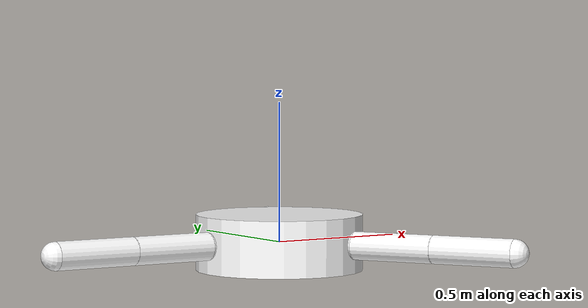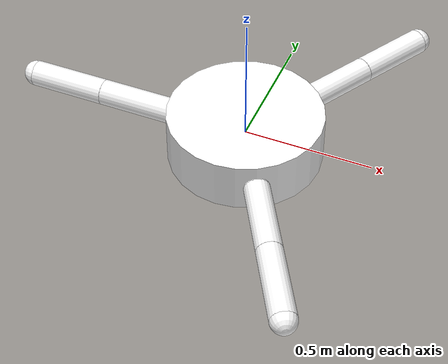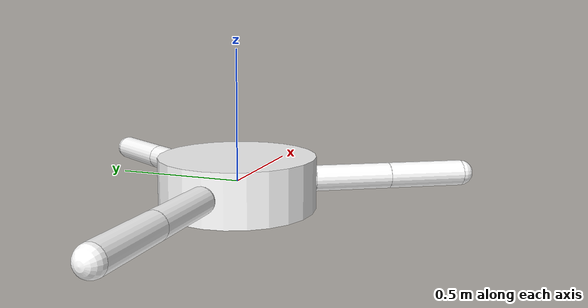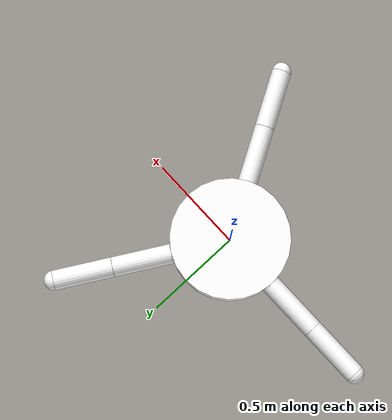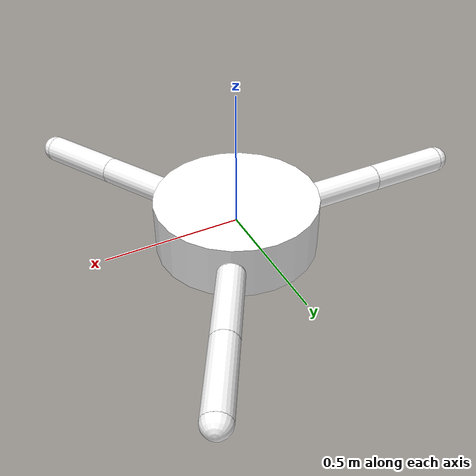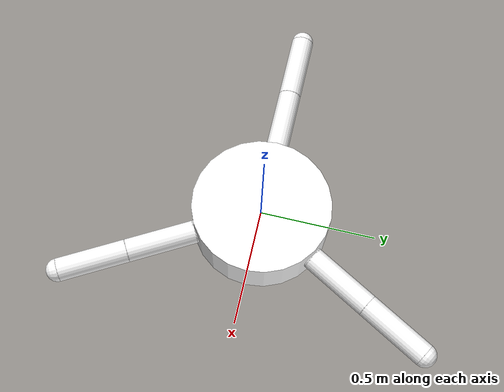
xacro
<?xml version='1.0' encoding='UTF-8'?>
<robot xmlns:xacro="http:/ros.org/wiki/xacro" name="world">

    <link name="world"/>

    <xacro:include filename="$(find tribot)/urdf/tribot.urdf.xacro" />
    <xacro:tri parent="world" base_radius="0.3" base_length="0.2" hip_radius="0.05" leg_length="0.3" />

</robot>

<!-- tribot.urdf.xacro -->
<robot name="tribot"
    xmlns:xacro="http://ros.org/wiki/xacro">

    <xacro:macro name="tri" params="parent base_radius base_length hip_radius leg_length">

        <link name="base_link">
            <inertial>
                <origin rpy="0 0 0" xyz="0 0 0"/>
                <mass value="2"/>
                <inertia ixx="0.1" ixy="0" ixz="0" iyy="0.1" iyz="0" izz="0.1"/>
            </inertial>
            <visual>
                <origin rpy="0 0 0" xyz="0 0 0"/>
                <geometry>
                    <cylinder radius="${base_radius}" length="${base_length}"/>
                </geometry>
                <material name="framemat0">
                    <color rgba="1 1 1 1" />
                </material>
            </visual>
            <collision>
                <origin rpy="0 0 0" xyz="0 0 0"/>
                <geometry>
                    <cylinder radius="${base_radius}" length="${base_length}"/>
                </geometry>
            </collision>
        </link>

        <link name="hip_back">
            <inertial>
                <origin rpy="0 0 0" xyz="0 0 0"/>
                <mass value="0.3"/>
                <inertia ixx="0.1" ixy="0" ixz="0" iyy="0.1" iyz="0" izz="0.1"/>
            </inertial>
            <visual>
                <origin rpy="0 0 0" xyz="0 0 0"/>
                <geometry>
                    <sphere radius="${hip_radius}" />
                </geometry>
                <material name="framemat0">
                    <color rgba="1 1 1 1" />
                </material>
            </visual>
            <collision>
                <origin rpy="0 0 0" xyz="0 0 0"/>
                <geometry>
                    <sphere radius="${hip_radius}" />
                </geometry>
            </collision>
        </link>

        <link name="hip_left">
            <inertial>
                <origin rpy="0 0 0" xyz="0 0 0"/>
                <mass value="0.3"/>
                <inertia ixx="0.1" ixy="0" ixz="0" iyy="0.1" iyz="0" izz="0.1"/>
            </inertial>
            <visual>
                <origin rpy="0 0 0" xyz="0 0 0"/>
                <geometry>
                    <sphere radius="${hip_radius}" />
                </geometry>
                <material name="framemat0">
                    <color rgba="1 1 1 1" />
                </material>
            </visual>
            <collision>
                <origin rpy="0 0 0" xyz="0 0 0"/>
                <geometry>
                    <sphere radius="${hip_radius}" />
                </geometry>
            </collision>
        </link>

        <link name="hip_right">
            <inertial>
                <origin rpy="0 0 0" xyz="0 0 0"/>
                <mass value="0.3"/>
                <inertia ixx="0.1" ixy="0" ixz="0" iyy="0.1" iyz="0" izz="0.1"/>
            </inertial>
            <visual>
                <origin rpy="0 0 0" xyz="0 0 0"/>
                <geometry>
                    <sphere radius="${hip_radius}" />
                </geometry>
                <material name="framemat0">
                    <color rgba="1 1 1 1" />
                </material>
            </visual>
            <collision>
                <origin rpy="0 0 0" xyz="0 0 0"/>
                <geometry>
                    <sphere radius="${hip_radius}" />
                </geometry>
            </collision>
        </link>

        <link name="leg_back">
            <inertial>
                <origin rpy="0 0 0" xyz="0 0 ${0.5*leg_length}"/>
                <mass value="0.3"/>
                <inertia ixx="0.1" ixy="0" ixz="0" iyy="0.1" iyz="0" izz="0.1"/>
            </inertial>
            <visual>
                <origin rpy="0 0 0" xyz="0 0 ${0.5*leg_length}"/>
                <geometry>
                    <cylinder radius="0.05" length="${leg_length}"/>
                </geometry>
                <material name="framemat0">
                    <color rgba="1 1 1 1" />
                </material>
            </visual>
            <collision>
                <origin rpy="0 0 0" xyz="0 0 ${0.5*leg_length}"/>
                <geometry>
                    <cylinder radius="0.05" length="${leg_length}"/>
                </geometry>
            </collision>
            <visual>
                <origin rpy="0 0 0" xyz="0 0 ${leg_length}"/>
                <geometry>
                    <sphere radius="0.05"/>
                </geometry>
                <material name="framemat0">
                    <color rgba="1 1 1 1" />
                </material>
            </visual>
            <collision>
                <origin rpy="0 0 0" xyz="0 0 ${leg_length}"/>
                <geometry>
                    <sphere radius="0.05"/>
                </geometry>
            </collision>
        </link>

        <link name="leg_left">
            <inertial>
                <origin rpy="0 0 0" xyz="0 0 ${0.5*leg_length}"/>
                <mass value="0.3"/>
                <inertia ixx="0.1" ixy="0" ixz="0" iyy="0.1" iyz="0" izz="0.1"/>
            </inertial>
            <visual>
                <origin rpy="0 0 0" xyz="0 0 ${0.5*leg_length}"/>
                <geometry>
                    <cylinder radius="0.05" length="${leg_length}"/>
                </geometry>
                <material name="framemat0">
                    <color rgba="1 1 1 1" />
                </material>
            </visual>
            <collision>
                <origin rpy="0 0 0" xyz="0 0 ${0.5*leg_length}"/>
                <geometry>
                    <cylinder radius="0.05" length="${leg_length}"/>
                </geometry>
            </collision>
            <visual>
                <origin rpy="0 0 0" xyz="0 0 ${leg_length}"/>
                <geometry>
                    <sphere radius="0.05"/>
                </geometry>
                <material name="framemat0">
                    <color rgba="1 1 1 1" />
                </material>
            </visual>
            <collision>
                <origin rpy="0 0 0" xyz="0 0 ${leg_length}"/>
                <geometry>
                    <sphere radius="0.05"/>
                </geometry>
            </collision>
        </link>

        <link name="leg_right">
            <inertial>
                <origin rpy="0 0 0" xyz="0 0 ${0.5*leg_length}"/>
                <mass value="0.3"/>
                <inertia ixx="0.1" ixy="0" ixz="0" iyy="0.1" iyz="0" izz="0.1"/>
            </inertial>
            <visual>
                <origin rpy="0 0 0" xyz="0 0 ${0.5*leg_length}"/>
                <geometry>
                    <cylinder radius="0.05" length="${leg_length}"/>
                </geometry>
                <material name="framemat0">
                    <color rgba="1 1 1 1" />
                </material>
            </visual>
            <collision>
                <origin rpy="0 0 0" xyz="0 0 ${0.5*leg_length}"/>
                <geometry>
                    <cylinder radius="0.05" length="${leg_length}"/>
                </geometry>
            </collision>
            <visual>
                <origin rpy="0 0 0" xyz="0 0 ${leg_length}"/>
                <geometry>
                    <sphere radius="0.05"/>
                </geometry>
                <material name="framemat0">
                    <color rgba="1 1 1 1" />
                </material>
            </visual>
            <collision>
                <origin rpy="0 0 0" xyz="0 0 ${leg_length}"/>
                <geometry>
                    <sphere radius="0.05"/>
                </geometry>
            </collision>
        </link>

        <link name="foot_back">
            <inertial>
                <origin rpy="0 0 0" xyz="0 0 ${0.5*leg_length}"/>
                <mass value="0.3"/>
                <inertia ixx="0.1" ixy="0" ixz="0" iyy="0.1" iyz="0" izz="0.1"/>
            </inertial>
            <visual>
                <origin rpy="0 0 0" xyz="0 0 ${0.5*leg_length}"/>
                <geometry>
                    <cylinder radius="0.05" length="${leg_length}"/>
                </geometry>
                <material name="framemat0">
                    <color rgba="1 1 1 1" />
                </material>
            </visual>
            <collision>
                <origin rpy="0 0 0" xyz="0 0 ${0.5*leg_length}"/>
                <geometry>
                    <cylinder radius="0.05" length="${leg_length}"/>
                </geometry>
            </collision>
            <visual>
                <origin rpy="0 0 0" xyz="0 0 ${leg_length}"/>
                <geometry>
                    <sphere radius="0.05"/>
                </geometry>
                <material name="framemat0">
                    <color rgba="1 1 1 1" />
                </material>
            </visual>
            <collision>
                <origin rpy="0 0 0" xyz="0 0 ${leg_length}"/>
                <geometry>
                    <sphere radius="0.05"/>
                </geometry>
            </collision>
        </link>

        <link name="foot_left">
            <inertial>
                <origin rpy="0 0 0" xyz="0 0 ${0.5*leg_length}"/>
                <mass value="0.3"/>
                <inertia ixx="0.1" ixy="0" ixz="0" iyy="0.1" iyz="0" izz="0.1"/>
            </inertial>
            <visual>
                <origin rpy="0 0 0" xyz="0 0 ${0.5*leg_length}"/>
                <geometry>
                    <cylinder radius="0.05" length="${leg_length}"/>
                </geometry>
                <material name="framemat0">
                    <color rgba="1 1 1 1" />
                </material>
            </visual>
            <collision>
                <origin rpy="0 0 0" xyz="0 0 ${0.5*leg_length}"/>
                <geometry>
                    <cylinder radius="0.05" length="${leg_length}"/>
                </geometry>
            </collision>
            <visual>
                <origin rpy="0 0 0" xyz="0 0 ${leg_length}"/>
                <geometry>
                    <sphere radius="0.05"/>
                </geometry>
                <material name="framemat0">
                    <color rgba="1 1 1 1" />
                </material>
            </visual>
            <collision>
                <origin rpy="0 0 0" xyz="0 0 ${leg_length}"/>
                <geometry>
                    <sphere radius="0.05"/>
                </geometry>
            </collision>
        </link>

        <link name="foot_right">
            <inertial>
                <origin rpy="0 0 0" xyz="0 0 ${0.5*leg_length}"/>
                <mass value="0.3"/>
                <inertia ixx="0.1" ixy="0" ixz="0" iyy="0.1" iyz="0" izz="0.1"/>
            </inertial>
            <visual>
                <origin rpy="0 0 0" xyz="0 0 ${0.5*leg_length}"/>
                <geometry>
                    <cylinder radius="0.05" length="${leg_length}"/>
                </geometry>
                <material name="framemat0">
                    <color rgba="1 1 1 1" />
                </material>
            </visual>
            <collision>
                <origin rpy="0 0 0" xyz="0 0 ${0.5*leg_length}"/>
                <geometry>
                    <cylinder radius="0.05" length="${leg_length}"/>
                </geometry>
            </collision>
            <visual>
                <origin rpy="0 0 0" xyz="0 0 ${leg_length}"/>
                <geometry>
                    <sphere radius="0.05"/>
                </geometry>
                <material name="framemat0">
                    <color rgba="1 1 1 1" />
                </material>
            </visual>
            <collision>
                <origin rpy="0 0 0" xyz="0 0 ${leg_length}"/>
                <geometry>
                    <sphere radius="0.05"/>
                </geometry>
            </collision>
        </link>

        <joint name="hip_back_joint" type="continuous">
            <parent link="base_link"/>
            <child link="hip_back"/>
            <origin xyz="${-base_radius} 0 0" rpy="0 0 3.1415" />
            <axis xyz="1 0 0" />
        </joint>

        <joint name="hip_left_joint" type="continuous">
            <parent link="base_link"/>
            <child link="hip_left"/>
            <origin xyz="${base_radius*0.5} ${0.866*base_radius}  0" rpy="0 0 1.0472" />
            <axis xyz="1 0 0" />
        </joint>

        <joint name="hip_right_joint" type="continuous">
            <parent link="base_link"/>
            <child link="hip_right"/>
            <origin xyz="${base_radius*0.5} ${-0.866*base_radius}  0" rpy="0 0 -1.0472" />
            <axis xyz="1 0 0" />
        </joint>

        <joint name="leg_back_joint" type="continuous">
            <parent link="hip_back"/>
            <child link="leg_back"/>
            <origin xyz="0 0 0" rpy="0 1.57 0" />
            <axis xyz="0 1 0" />
        </joint>

        <joint name="leg_left_joint" type="continuous">
            <parent link="hip_left"/>
            <child link="leg_left"/>
            <origin xyz="0 0 0" rpy="0 1.57 0" />
            <axis xyz="0 1 0" />
        </joint>

        <joint name="leg_right_joint" type="continuous">
            <parent link="hip_right"/>
            <child link="leg_right"/>
            <origin xyz="0 0 0" rpy="0 1.57 0" />
            <axis xyz="0 1 0" />
        </joint>

        <joint name="foot_back_joint" type="continuous">
            <parent link="leg_back"/>
            <child link="foot_back"/>
            <origin xyz="0 0 ${1.0*leg_length}" rpy="0 0 0" />
            <axis xyz="0 1 0" />
        </joint>

        <joint name="foot_left_joint" type="continuous">
            <parent link="leg_left"/>
            <child link="foot_left"/>
            <origin xyz="0 0 ${1.0*leg_length}" rpy="0 0 0" />
            <axis xyz="0 1 0" />
        </joint>

        <joint name="foot_right_joint" type="continuous">
            <parent link="leg_right"/>
            <child link="foot_right"/>
            <origin xyz="0 0 ${1.0*leg_length}" rpy="0 0 0" />
            <axis xyz="0 1 0" />
        </joint>

        <joint name="base_joint" type="fixed">
            <parent link="${parent}"/>
            <child link="base_link"/>
            <origin xyz="0 0 0" rpy="0 0 0" />
            <axis xyz="1 0 0" />
        </joint>

    </xacro:macro>
</robot>
